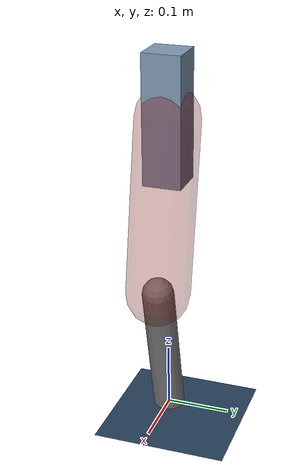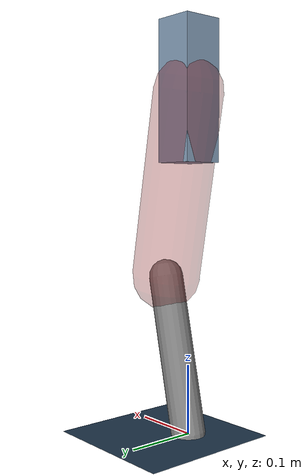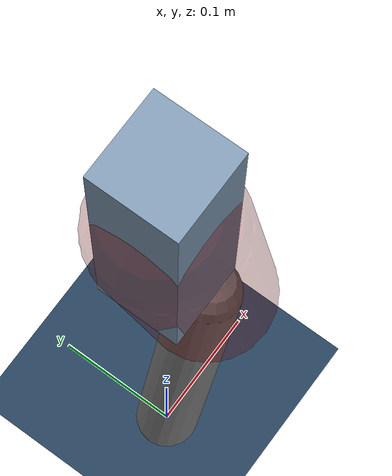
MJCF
<mujoco model="Hopper2D">
	<compiler inertiafromgeom="true" angle="radian" />
	<option timestep="0.001" integrator="implicit" cone="elliptic" solver="Newton" tolerance="1e-10" />

	<default>
		<geom contype="1" conaffinity="1" condim="3" friction="2 0.005 0.0001" solref="0.005 1" />
		<joint limited="true" damping="0.1" />
	</default>

	<asset>
		<texture name="skybox" type="skybox" builtin="gradient" rgb1=".4 .6 .8" rgb2="0 0 0" width="800" height="800" />
		<texture name="grid" type="2d" builtin="checker" rgb1=".1 .2 .3" rgb2=".2 .3 .4" width="300" height="300" mark="edge" markrgb=".2 .3 .4" />
		<material name="ground" texture="grid" texrepeat="1 1" texuniform="true" reflectance="0.1" />
		<material name="leg" rgba="0.5 0.6 0.7 1" />
	</asset>

	<worldbody>

		<geom name="floor" type="plane" size="5 5 0.25" material="ground" />

		<light directional="false" diffuse="0.8 0.8 0.8" specular="0.3 0.3 0.3" pos="0 0 2" dir="0 0 -1" />
		<light mode="targetbodycom" target="base" directional="false" diffuse="0.8 0.8 0.8" specular="0.3 0.3 0.3" pos="0 0 2" dir="0 0 -1" />

		<camera name="fixed" pos="0 -2 1" xyaxes="1 0 0 0 0 1" />
		<camera name="tracking" mode="trackcom" pos="0 -3 1" />

		<body name="root" pos="0 0 0.4906794457636743">
			<joint name="slide_x" type="slide" axis="1 0 0" range="-100 100" />
			<joint name="slide_z" type="slide" axis="0 0 1" range="0 10" />

			<body name="base" pos="0 0 0">
				<geom name="torso" type="box" size="0.03 0.03 0.1" mass="2.186" material="leg" />

				<body name="link1" pos="0 0 0" euler="0 1.3858798309533091 0">
					<joint type="hinge" axis="0 -1 0" pos="0 0 0" name="hinge1" limited="true" range="-3.14 3.14" stiffness="0" damping="0.1" />
					<geom name="thigh" type="capsule" fromto="0 0 0 0.2699000613265157 0 0" size="0.05" rgba="0.5 0 0 0.3" mass="0.9084301655815922" />

					<body name="link2" pos="0.2699000613265157 0 0" euler="0 0.40164142357408106 0">
						<joint type="hinge" axis="0 -1 0" pos="0 0 0" name="hinge2" limited="true" range="-3.14 3.14" stiffness="0" damping="0.1" />
						<geom name="shank" type="capsule" fromto="0 0 0 0.23077938443715862 0 0" size="0.025" mass="0.4266235075497269" />

					</body>
				</body>
			</body>
		</body>
	</worldbody>

	<actuator>
		<motor name="torque1" joint="hinge1" ctrlrange="-48.93927215975057 48.93927215975057" ctrllimited="true" gear="1" />
		<motor name="torque2" joint="hinge2" ctrlrange="-106.24718780403005 106.24718780403005" ctrllimited="true" gear="1" />
	</actuator>
</mujoco>
